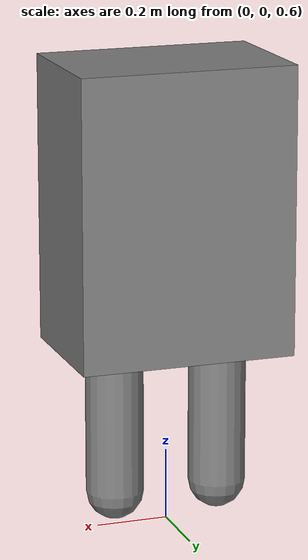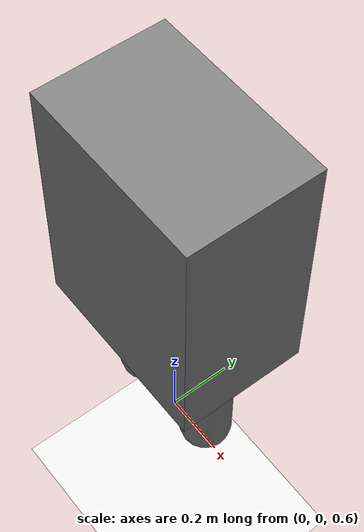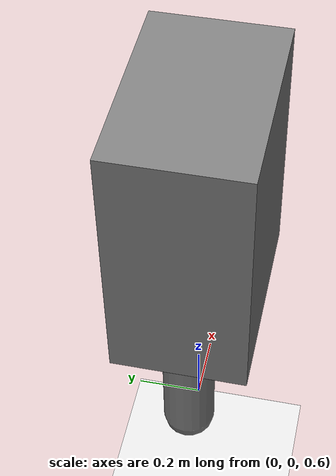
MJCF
<?xml version='1.0' encoding='utf-8'?>
<mujoco model="agi_walker">
  <option gravity="0 0 -9.8" timestep="0.001" />
  <default>
    <joint damping="1.0" frictionloss="0.05" />
    <geom friction="0.8 0.005 0.0001" />
  </default>
  <worldbody>
    <geom name="floor" type="plane" size="10 10 0.1" rgba="0.9 0.9 0.9 1" />
    <body name="torso" pos="0 0 1.5">
      <geom type="box" size="0.3 0.2 0.4" mass="5.0" />
      <freejoint name="root" />
      <body name="left_leg" pos="-0.15 0 -0.4">
        <geom type="capsule" size="0.08 0.4" mass="2.0" />
        <joint name="hip_left" type="hinge" axis="0 1 0" range="-45.0 90.0" />
      </body>
      <body name="right_leg" pos="0.15 0 -0.4">
        <geom type="capsule" size="0.08 0.4" mass="2.0" />
        <joint name="hip_right" type="hinge" axis="0 1 0" range="-45.0 90.0" />
      </body>
    </body>
  </worldbody>
  <actuator>
    <motor name="motor_hip_left" joint="hip_left" gear="100" />
    <motor name="motor_hip_right" joint="hip_right" gear="100" />
  </actuator>
</mujoco>
